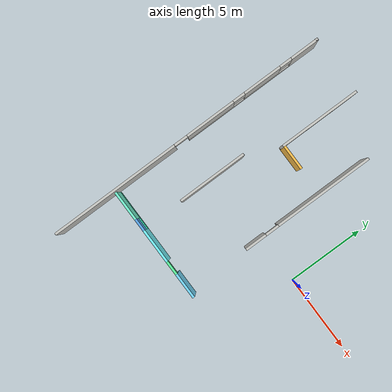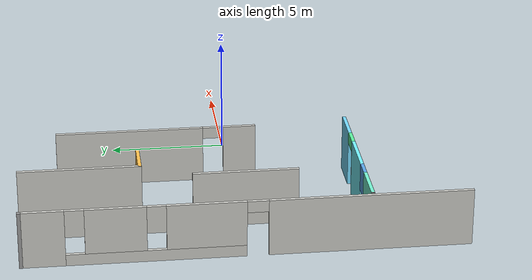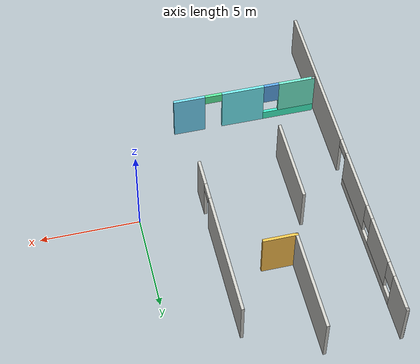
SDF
<sdf version="1.7">
 <model name="training_area">
  <link name="Wall_13">
   <pose>-6.65268 -5.18047 0 0 -0 3.14159</pose>
   <inertial>
    <mass>1</mass>
    <inertia><ixx>1</ixx><ixy>0</ixy><ixz>0</ixz><iyy>1</iyy><iyz>0</iyz><izz>1</izz></inertia>
   </inertial>
   <visual name="Wall_13_Visual_2">
    <pose>2.39091 0 0.25 0 -0 0</pose>
    <geometry><box><size>2.71819 0.15 0.5</size></box></geometry>
    <material>
     <script><uri>file://media/materials/scripts/gazebo.material</uri><name>Gazebo/Grey</name></script>
     <ambient>0.261 1 0.8 1</ambient>
     <shader type="pixel"><normal_map>__default__</normal_map></shader>
     <diffuse>0.7 0.7 0.7 1</diffuse>
     <specular>0.01 0.01 0.01 1</specular>
     <emissive>0 0 0 1</emissive>
    </material>
    <meta><layer>0</layer></meta>
   </visual>
   <visual name="Wall_13_Visual_5">
    <pose>-1.64458 0 2.25 0 -0 0</pose>
    <geometry><box><size>0.9 0.15 0.5</size></box></geometry>
    <material>
     <script><uri>file://media/materials/scripts/gazebo.material</uri><name>Gazebo/Grey</name></script>
     <ambient>0.361 0.963 0.627 1</ambient>
     <shader type="pixel"><normal_map>__default__</normal_map></shader>
     <diffuse>0.7 0.7 0.7 1</diffuse>
     <specular>0.01 0.01 0.01 1</specular>
     <emissive>0 0 0 1</emissive>
    </material>
    <meta><layer>0</layer></meta>
   </visual>
   <visual name="Wall_13_Visual_3">
    <pose>2.79091 0 1.5 0 -0 0</pose>
    <geometry><box><size>1.91819 0.15 2</size></box></geometry>
    <material>
     <script><uri>file://media/materials/scripts/gazebo.material</uri><name>Gazebo/Grey</name></script>
     <ambient>0.461 0.963 0.827 1</ambient>
     <shader type="pixel"><normal_map>__default__</normal_map></shader>
     <diffuse>0.7 0.7 0.7 1</diffuse>
     <specular>0.01 0.01 0.01 1</specular>
     <emissive>0 0 0 1</emissive>
    </material>
    <meta><layer>0</layer></meta>
   </visual>
   <visual name="Wall_13_Visual_1">
    <pose>-0.081383 0 1.25 0 -0 0</pose>
    <geometry><box><size>2.22639 0.15 2.5</size></box></geometry>
    <material>
     <script><uri>file://media/materials/scripts/gazebo.material</uri><name>Gazebo/Grey</name></script>
     <ambient>0.461 0.963 1 1</ambient>
     <shader type="pixel"><normal_map>__default__</normal_map></shader>
     <diffuse>0.7 0.7 0.7 1</diffuse>
     <specular>0.01 0.01 0.01 1</specular>
     <emissive>0 0 0 1</emissive>
    </material>
    <meta><layer>0</layer></meta>
   </visual>
   <visual name="Wall_13_Visual_4">
    <pose>1.43181 0 1.9 0 -0 0</pose>
    <geometry><box><size>0.8 0.15 1.2</size></box></geometry>
    <material>
     <script><uri>file://media/materials/scripts/gazebo.material</uri><name>Gazebo/Grey</name></script>
     <ambient>0.361 0.663 0.927 1</ambient>
     <shader type="pixel"><normal_map>__default__</normal_map></shader>
     <diffuse>0.7 0.7 0.7 1</diffuse>
     <specular>0.01 0.01 0.01 1</specular>
     <emissive>0 0 0 1</emissive>
    </material>
    <meta><layer>0</layer></meta>
   </visual>
   <visual name="Wall_13_Visual_0">
    <pose>-2.92229 0 1.25 0 -0 0</pose>
    <geometry><box><size>1.65542 0.15 2.5</size></box></geometry>
    <material>
     <script><uri>file://media/materials/scripts/gazebo.material</uri><name>Gazebo/Grey</name></script>
     <ambient>0.461 0.863 1 1</ambient>
     <shader type="pixel"><normal_map>__default__</normal_map></shader>
     <diffuse>0.7 0.7 0.7 1</diffuse>
     <specular>0.01 0.01 0.01 1</specular>
     <emissive>0 0 0 1</emissive>
    </material>
    <meta><layer>0</layer></meta>
   </visual>
   <collision name="Wall_13_Collision_4">
    <pose>1.43181 0 1.9 0 -0 0</pose>
    <geometry><box><size>0.8 0.15 1.2</size></box></geometry>
    <surface>
     <friction>
      <ode><mu>1</mu><mu2>1</mu2><fdir1>0 0 0</fdir1><slip1>0</slip1><slip2>0</slip2></ode>
      <torsional>
       <coefficient>1</coefficient>
       <patch_radius>0</patch_radius>
       <surface_radius>0</surface_radius>
       <use_patch_radius>1</use_patch_radius>
       <ode><slip>0</slip></ode>
      </torsional>
     </friction>
     <bounce><restitution_coefficient>0</restitution_coefficient><threshold>1e+06</threshold></bounce>
     <contact>
      <collide_without_contact>0</collide_without_contact>
      <collide_without_contact_bitmask>1</collide_without_contact_bitmask>
      <collide_bitmask>1</collide_bitmask>
      <ode>
       <soft_cfm>0</soft_cfm>
       <soft_erp>0.2</soft_erp>
       <kp>1e+13</kp>
       <kd>1</kd>
       <max_vel>0.01</max_vel>
       <min_depth>0</min_depth>
      </ode>
      <bullet>
       <split_impulse>1</split_impulse>
       <split_impulse_penetration_threshold>-0.01</split_impulse_penetration_threshold>
       <soft_cfm>0</soft_cfm>
       <soft_erp>0.2</soft_erp>
       <kp>1e+13</kp>
       <kd>1</kd>
      </bullet>
     </contact>
    </surface>
   </collision>
   <collision name="Wall_13_Collision_1">
    <pose>-0.081383 0 1.25 0 -0 0</pose>
    <geometry><box><size>2.22639 0.15 2.5</size></box></geometry>
    <surface>
     <friction>
      <ode><mu>1</mu><mu2>1</mu2><fdir1>0 0 0</fdir1><slip1>0</slip1><slip2>0</slip2></ode>
      <torsional>
       <coefficient>1</coefficient>
       <patch_radius>0</patch_radius>
       <surface_radius>0</surface_radius>
       <use_patch_radius>1</use_patch_radius>
       <ode><slip>0</slip></ode>
      </torsional>
     </friction>
     <bounce><restitution_coefficient>0</restitution_coefficient><threshold>1e+06</threshold></bounce>
     <contact>
      <collide_without_contact>0</collide_without_contact>
      <collide_without_contact_bitmask>1</collide_without_contact_bitmask>
      <collide_bitmask>1</collide_bitmask>
      <ode>
       <soft_cfm>0</soft_cfm>
       <soft_erp>0.2</soft_erp>
       <kp>1e+13</kp>
       <kd>1</kd>
       <max_vel>0.01</max_vel>
       <min_depth>0</min_depth>
      </ode>
      <bullet>
       <split_impulse>1</split_impulse>
       <split_impulse_penetration_threshold>-0.01</split_impulse_penetration_threshold>
       <soft_cfm>0</soft_cfm>
       <soft_erp>0.2</soft_erp>
       <kp>1e+13</kp>
       <kd>1</kd>
      </bullet>
     </contact>
    </surface>
   </collision>
   <collision name="Wall_13_Collision_2">
    <pose>2.39091 0 0.25 0 -0 0</pose>
    <geometry><box><size>2.71819 0.15 0.5</size></box></geometry>
    <surface>
     <friction>
      <ode><mu>1</mu><mu2>1</mu2><fdir1>0 0 0</fdir1><slip1>0</slip1><slip2>0</slip2></ode>
      <torsional>
       <coefficient>1</coefficient>
       <patch_radius>0</patch_radius>
       <surface_radius>0</surface_radius>
       <use_patch_radius>1</use_patch_radius>
       <ode><slip>0</slip></ode>
      </torsional>
     </friction>
     <bounce><restitution_coefficient>0</restitution_coefficient><threshold>1e+06</threshold></bounce>
     <contact>
      <collide_without_contact>0</collide_without_contact>
      <collide_without_contact_bitmask>1</collide_without_contact_bitmask>
      <collide_bitmask>1</collide_bitmask>
      <ode>
       <soft_cfm>0</soft_cfm>
       <soft_erp>0.2</soft_erp>
       <kp>1e+13</kp>
       <kd>1</kd>
       <max_vel>0.01</max_vel>
       <min_depth>0</min_depth>
      </ode>
      <bullet>
       <split_impulse>1</split_impulse>
       <split_impulse_penetration_threshold>-0.01</split_impulse_penetration_threshold>
       <soft_cfm>0</soft_cfm>
       <soft_erp>0.2</soft_erp>
       <kp>1e+13</kp>
       <kd>1</kd>
      </bullet>
     </contact>
    </surface>
   </collision>
   <collision name="Wall_13_Collision_0">
    <pose>-2.92229 0 1.25 0 -0 0</pose>
    <geometry><box><size>1.65542 0.15 2.5</size></box></geometry>
    <surface>
     <friction>
      <ode><mu>1</mu><mu2>1</mu2><fdir1>0 0 0</fdir1><slip1>0</slip1><slip2>0</slip2></ode>
      <torsional>
       <coefficient>1</coefficient>
       <patch_radius>0</patch_radius>
       <surface_radius>0</surface_radius>
       <use_patch_radius>1</use_patch_radius>
       <ode><slip>0</slip></ode>
      </torsional>
     </friction>
     <bounce><restitution_coefficient>0</restitution_coefficient><threshold>1e+06</threshold></bounce>
     <contact>
      <collide_without_contact>0</collide_without_contact>
      <collide_without_contact_bitmask>1</collide_without_contact_bitmask>
      <collide_bitmask>1</collide_bitmask>
      <ode>
       <soft_cfm>0</soft_cfm>
       <soft_erp>0.2</soft_erp>
       <kp>1e+13</kp>
       <kd>1</kd>
       <max_vel>0.01</max_vel>
       <min_depth>0</min_depth>
      </ode>
      <bullet>
       <split_impulse>1</split_impulse>
       <split_impulse_penetration_threshold>-0.01</split_impulse_penetration_threshold>
       <soft_cfm>0</soft_cfm>
       <soft_erp>0.2</soft_erp>
       <kp>1e+13</kp>
       <kd>1</kd>
      </bullet>
     </contact>
    </surface>
   </collision>
   <collision name="Wall_13_Collision_5">
    <pose>-1.64458 0 2.25 0 -0 0</pose>
    <geometry><box><size>0.9 0.15 0.5</size></box></geometry>
    <surface>
     <friction>
      <ode><mu>1</mu><mu2>1</mu2><fdir1>0 0 0</fdir1><slip1>0</slip1><slip2>0</slip2></ode>
      <torsional>
       <coefficient>1</coefficient>
       <patch_radius>0</patch_radius>
       <surface_radius>0</surface_radius>
       <use_patch_radius>1</use_patch_radius>
       <ode><slip>0</slip></ode>
      </torsional>
     </friction>
     <bounce><restitution_coefficient>0</restitution_coefficient><threshold>1e+06</threshold></bounce>
     <contact>
      <collide_without_contact>0</collide_without_contact>
      <collide_without_contact_bitmask>1</collide_without_contact_bitmask>
      <collide_bitmask>1</collide_bitmask>
      <ode>
       <soft_cfm>0</soft_cfm>
       <soft_erp>0.2</soft_erp>
       <kp>1e+13</kp>
       <kd>1</kd>
       <max_vel>0.01</max_vel>
       <min_depth>0</min_depth>
      </ode>
      <bullet>
       <split_impulse>1</split_impulse>
       <split_impulse_penetration_threshold>-0.01</split_impulse_penetration_threshold>
       <soft_cfm>0</soft_cfm>
       <soft_erp>0.2</soft_erp>
       <kp>1e+13</kp>
       <kd>1</kd>
      </bullet>
     </contact>
    </surface>
   </collision>
   <collision name="Wall_13_Collision_3">
    <pose>2.79091 0 1.5 0 -0 0</pose>
    <geometry><box><size>1.91819 0.15 2</size></box></geometry>
    <surface>
     <friction>
      <ode><mu>1</mu><mu2>1</mu2><fdir1>0 0 0</fdir1><slip1>0</slip1><slip2>0</slip2></ode>
      <torsional>
       <coefficient>1</coefficient>
       <patch_radius>0</patch_radius>
       <surface_radius>0</surface_radius>
       <use_patch_radius>1</use_patch_radius>
       <ode><slip>0</slip></ode>
      </torsional>
     </friction>
     <bounce><restitution_coefficient>0</restitution_coefficient><threshold>1e+06</threshold></bounce>
     <contact>
      <collide_without_contact>0</collide_without_contact>
      <collide_without_contact_bitmask>1</collide_without_contact_bitmask>
      <collide_bitmask>1</collide_bitmask>
      <ode>
       <soft_cfm>0</soft_cfm>
       <soft_erp>0.2</soft_erp>
       <kp>1e+13</kp>
       <kd>1</kd>
       <max_vel>0.01</max_vel>
       <min_depth>0</min_depth>
      </ode>
      <bullet>
       <split_impulse>1</split_impulse>
       <split_impulse_penetration_threshold>-0.01</split_impulse_penetration_threshold>
       <soft_cfm>0</soft_cfm>
       <soft_erp>0.2</soft_erp>
       <kp>1e+13</kp>
       <kd>1</kd>
      </bullet>
     </contact>
    </surface>
   </collision>
  </link>
  <link name="Wall_14">
   <pose>-10.3277 -5.18047 0 0 -0 0</pose>
   <visual name="Wall_14_Visual">
    <pose>0 0 1.25 0 -0 0</pose>
    <geometry><box><size>0.15 0.15 2.5</size></box></geometry>
    <material>
     <script><uri>file://media/materials/scripts/gazebo.material</uri><name>Gazebo/Grey</name></script>
     <ambient>1 1 1 1</ambient>
     <shader type="pixel"/>
    </material>
    <meta><layer>0</layer></meta>
   </visual>
   <collision name="Wall_14_Collision">
    <pose>0 0 1.25 0 -0 0</pose>
    <geometry><box><size>0.15 0.15 2.5</size></box></geometry>
    <surface>
     <friction>
      <ode><mu>1</mu><mu2>1</mu2><fdir1>0 0 0</fdir1><slip1>0</slip1><slip2>0</slip2></ode>
      <torsional>
       <coefficient>1</coefficient>
       <patch_radius>0</patch_radius>
       <surface_radius>0</surface_radius>
       <use_patch_radius>1</use_patch_radius>
       <ode><slip>0</slip></ode>
      </torsional>
     </friction>
     <bounce><restitution_coefficient>0</restitution_coefficient><threshold>1e+06</threshold></bounce>
     <contact>
      <collide_without_contact>0</collide_without_contact>
      <collide_without_contact_bitmask>1</collide_without_contact_bitmask>
      <collide_bitmask>1</collide_bitmask>
      <ode>
       <soft_cfm>0</soft_cfm>
       <soft_erp>0.2</soft_erp>
       <kp>1e+13</kp>
       <kd>1</kd>
       <max_vel>0.01</max_vel>
       <min_depth>0</min_depth>
      </ode>
      <bullet>
       <split_impulse>1</split_impulse>
       <split_impulse_penetration_threshold>-0.01</split_impulse_penetration_threshold>
       <soft_cfm>0</soft_cfm>
       <soft_erp>0.2</soft_erp>
       <kp>1e+13</kp>
       <kd>1</kd>
      </bullet>
     </contact>
    </surface>
   </collision>
  </link>
  <link name="Wall_18">
   <pose>-3.31028 3.23789 0 0 -0 1.5708</pose>
   <inertial>
    <mass>1</mass>
    <inertia><ixx>1</ixx><ixy>0</ixy><ixz>0</ixz><iyy>1</iyy><iyz>0</iyz><izz>1</izz></inertia>
   </inertial>
   <visual name="Wall_18_Visual_1">
    <pose>1.15758 0 1.25 0 -0 0</pose>
    <geometry><box><size>6.43485 0.15 2.5</size></box></geometry>
    <material>
     <script><uri>file://media/materials/scripts/gazebo.material</uri><name>Gazebo/CeilingTiled</name></script>
     <ambient>0.361 0.363 0.927 1</ambient>
     <shader type="pixel"><normal_map>__default__</normal_map></shader>
     <diffuse>1 1 1 1</diffuse>
     <specular>0 0 0 1</specular>
     <emissive>0 0 0 1</emissive>
    </material>
    <meta><layer>0</layer></meta>
   </visual>
   <visual name="Wall_18_Visual_2">
    <pose>-2.50985 0 2.25 0 -0 0</pose>
    <geometry><box><size>0.9 0.15 0.5</size></box></geometry>
    <material>
     <script><uri>file://media/materials/scripts/gazebo.material</uri><name>Gazebo/CeilingTiled</name></script>
     <ambient>0.361 0.363 0.627 1</ambient>
     <shader type="pixel"><normal_map>__default__</normal_map></shader>
     <diffuse>1 1 1 1</diffuse>
     <specular>0 0 0 1</specular>
     <emissive>0 0 0 1</emissive>
    </material>
    <meta><layer>0</layer></meta>
   </visual>
   <visual name="Wall_18_Visual_0">
    <pose>-3.66742 0 1.25 0 -0 0</pose>
    <geometry><box><size>1.41515 0.15 2.5</size></box></geometry>
    <material>
     <script><uri>file://media/materials/scripts/gazebo.material</uri><name>Gazebo/CeilingTiled</name></script>
     <ambient>0.961 0.363 0.327 1</ambient>
     <shader type="pixel"><normal_map>__default__</normal_map></shader>
     <diffuse>1 1 1 1</diffuse>
     <specular>0 0 0 1</specular>
     <emissive>0 0 0 1</emissive>
    </material>
    <meta><layer>0</layer></meta>
   </visual>
   <collision name="Wall_18_Collision_0">
    <pose>-3.66742 0 1.25 0 -0 0</pose>
    <geometry><box><size>1.41515 0.15 2.5</size></box></geometry>
    <surface>
     <friction>
      <ode><mu>1</mu><mu2>1</mu2><fdir1>0 0 0</fdir1><slip1>0</slip1><slip2>0</slip2></ode>
      <torsional>
       <coefficient>1</coefficient>
       <patch_radius>0</patch_radius>
       <surface_radius>0</surface_radius>
       <use_patch_radius>1</use_patch_radius>
       <ode><slip>0</slip></ode>
      </torsional>
     </friction>
     <bounce><restitution_coefficient>0</restitution_coefficient><threshold>1e+06</threshold></bounce>
     <contact>
      <collide_without_contact>0</collide_without_contact>
      <collide_without_contact_bitmask>1</collide_without_contact_bitmask>
      <collide_bitmask>1</collide_bitmask>
      <ode>
       <soft_cfm>0</soft_cfm>
       <soft_erp>0.2</soft_erp>
       <kp>1e+13</kp>
       <kd>1</kd>
       <max_vel>0.01</max_vel>
       <min_depth>0</min_depth>
      </ode>
      <bullet>
       <split_impulse>1</split_impulse>
       <split_impulse_penetration_threshold>-0.01</split_impulse_penetration_threshold>
       <soft_cfm>0</soft_cfm>
       <soft_erp>0.2</soft_erp>
       <kp>1e+13</kp>
       <kd>1</kd>
      </bullet>
     </contact>
    </surface>
   </collision>
   <collision name="Wall_18_Collision_2">
    <pose>-2.50985 0 2.25 0 -0 0</pose>
    <geometry><box><size>0.9 0.15 0.5</size></box></geometry>
    <surface>
     <friction>
      <ode><mu>1</mu><mu2>1</mu2><fdir1>0 0 0</fdir1><slip1>0</slip1><slip2>0</slip2></ode>
      <torsional>
       <coefficient>1</coefficient>
       <patch_radius>0</patch_radius>
       <surface_radius>0</surface_radius>
       <use_patch_radius>1</use_patch_radius>
       <ode><slip>0</slip></ode>
      </torsional>
     </friction>
     <bounce><restitution_coefficient>0</restitution_coefficient><threshold>1e+06</threshold></bounce>
     <contact>
      <collide_without_contact>0</collide_without_contact>
      <collide_without_contact_bitmask>1</collide_without_contact_bitmask>
      <collide_bitmask>1</collide_bitmask>
      <ode>
       <soft_cfm>0</soft_cfm>
       <soft_erp>0.2</soft_erp>
       <kp>1e+13</kp>
       <kd>1</kd>
       <max_vel>0.01</max_vel>
       <min_depth>0</min_depth>
      </ode>
      <bullet>
       <split_impulse>1</split_impulse>
       <split_impulse_penetration_threshold>-0.01</split_impulse_penetration_threshold>
       <soft_cfm>0</soft_cfm>
       <soft_erp>0.2</soft_erp>
       <kp>1e+13</kp>
       <kd>1</kd>
      </bullet>
     </contact>
    </surface>
   </collision>
   <collision name="Wall_18_Collision_1">
    <pose>1.15758 0 1.25 0 -0 0</pose>
    <geometry><box><size>6.43485 0.15 2.5</size></box></geometry>
    <surface>
     <friction>
      <ode><mu>1</mu><mu2>1</mu2><fdir1>0 0 0</fdir1><slip1>0</slip1><slip2>0</slip2></ode>
      <torsional>
       <coefficient>1</coefficient>
       <patch_radius>0</patch_radius>
       <surface_radius>0</surface_radius>
       <use_patch_radius>1</use_patch_radius>
       <ode><slip>0</slip></ode>
      </torsional>
     </friction>
     <bounce><restitution_coefficient>0</restitution_coefficient><threshold>1e+06</threshold></bounce>
     <contact>
      <collide_without_contact>0</collide_without_contact>
      <collide_without_contact_bitmask>1</collide_without_contact_bitmask>
      <collide_bitmask>1</collide_bitmask>
      <ode>
       <soft_cfm>0</soft_cfm>
       <soft_erp>0.2</soft_erp>
       <kp>1e+13</kp>
       <kd>1</kd>
       <max_vel>0.01</max_vel>
       <min_depth>0</min_depth>
      </ode>
      <bullet>
       <split_impulse>1</split_impulse>
       <split_impulse_penetration_threshold>-0.01</split_impulse_penetration_threshold>
       <soft_cfm>0</soft_cfm>
       <soft_erp>0.2</soft_erp>
       <kp>1e+13</kp>
       <kd>1</kd>
      </bullet>
     </contact>
    </surface>
   </collision>
  </link>
  <link name="Wall_22">
   <pose>-6.80922 6.72196 0 0 0 -1.5708</pose>
   <visual name="Wall_22_Visual">
    <pose>0 0 1.25 0 -0 0</pose>
    <geometry><box><size>5.25 0.15 2.5</size></box></geometry>
    <material>
     <script><uri>file://media/materials/scripts/gazebo.material</uri><name>Gazebo/CeilingTiled</name></script>
     <ambient>1 0.764706 0.305882 1</ambient>
     <shader type="pixel"/>
    </material>
    <meta><layer>0</layer></meta>
   </visual>
   <collision name="Wall_22_Collision">
    <pose>0 0 1.25 0 -0 0</pose>
    <geometry><box><size>5.25 0.15 2.5</size></box></geometry>
    <surface>
     <friction>
      <ode><mu>1</mu><mu2>1</mu2><fdir1>0 0 0</fdir1><slip1>0</slip1><slip2>0</slip2></ode>
      <torsional>
       <coefficient>1</coefficient>
       <patch_radius>0</patch_radius>
       <surface_radius>0</surface_radius>
       <use_patch_radius>1</use_patch_radius>
       <ode><slip>0</slip></ode>
      </torsional>
     </friction>
     <bounce><restitution_coefficient>0</restitution_coefficient><threshold>1e+06</threshold></bounce>
     <contact>
      <collide_without_contact>0</collide_without_contact>
      <collide_without_contact_bitmask>1</collide_without_contact_bitmask>
      <collide_bitmask>1</collide_bitmask>
      <ode>
       <soft_cfm>0</soft_cfm>
       <soft_erp>0.2</soft_erp>
       <kp>1e+13</kp>
       <kd>1</kd>
       <max_vel>0.01</max_vel>
       <min_depth>0</min_depth>
      </ode>
      <bullet>
       <split_impulse>1</split_impulse>
       <split_impulse_penetration_threshold>-0.01</split_impulse_penetration_threshold>
       <soft_cfm>0</soft_cfm>
       <soft_erp>0.2</soft_erp>
       <kp>1e+13</kp>
       <kd>1</kd>
      </bullet>
     </contact>
    </surface>
   </collision>
  </link>
  <link name="Wall_23">
   <pose>-6.00922 4.17196 0 0 -0 0</pose>
   <visual name="Wall_23_Visual">
    <pose>0 0 1.25 0 -0 0</pose>
    <geometry><box><size>1.75 0.15 2.5</size></box></geometry>
    <material>
     <script><uri>file://media/materials/scripts/gazebo.material</uri><name>Gazebo/Grey</name></script>
     <ambient>1 0.764706 0.305882 1</ambient>
     <shader type="pixel"/>
    </material>
    <meta><layer>0</layer></meta>
   </visual>
   <collision name="Wall_23_Collision">
    <pose>0 0 1.25 0 -0 0</pose>
    <geometry><box><size>1.75 0.15 2.5</size></box></geometry>
    <surface>
     <friction>
      <ode><mu>1</mu><mu2>1</mu2><fdir1>0 0 0</fdir1><slip1>0</slip1><slip2>0</slip2></ode>
      <torsional>
       <coefficient>1</coefficient>
       <patch_radius>0</patch_radius>
       <surface_radius>0</surface_radius>
       <use_patch_radius>1</use_patch_radius>
       <ode><slip>0</slip></ode>
      </torsional>
     </friction>
     <bounce><restitution_coefficient>0</restitution_coefficient><threshold>1e+06</threshold></bounce>
     <contact>
      <collide_without_contact>0</collide_without_contact>
      <collide_without_contact_bitmask>1</collide_without_contact_bitmask>
      <collide_bitmask>1</collide_bitmask>
      <ode>
       <soft_cfm>0</soft_cfm>
       <soft_erp>0.2</soft_erp>
       <kp>1e+13</kp>
       <kd>1</kd>
       <max_vel>0.01</max_vel>
       <min_depth>0</min_depth>
      </ode>
      <bullet>
       <split_impulse>1</split_impulse>
       <split_impulse_penetration_threshold>-0.01</split_impulse_penetration_threshold>
       <soft_cfm>0</soft_cfm>
       <soft_erp>0.2</soft_erp>
       <kp>1e+13</kp>
       <kd>1</kd>
      </bullet>
     </contact>
    </surface>
   </collision>
  </link>
  <link name="Wall_26">
   <pose>-7.78566 -0.226392 0 0 0 -1.5708</pose>
   <inertial>
    <mass>1</mass>
    <inertia><ixx>1</ixx><ixy>0</ixy><ixz>0</ixz><iyy>1</iyy><iyz>0</iyz><izz>1</izz></inertia>
   </inertial>
   <visual name="Wall_26_Visual">
    <pose>0 0 1.25 0 -0 0</pose>
    <geometry><box><size>4.5 0.15 2.5</size></box></geometry>
    <material>
     <script><uri>file://media/materials/scripts/gazebo.material</uri><name>Gazebo/CeilingTiled</name></script>
     <ambient>0.6 0.6 0.106 1</ambient>
     <shader type="pixel"><normal_map>__default__</normal_map></shader>
     <diffuse>1 1 1 1</diffuse>
     <specular>0 0 0 1</specular>
     <emissive>0 0 0 1</emissive>
    </material>
    <meta><layer>0</layer></meta>
   </visual>
   <collision name="Wall_26_Collision">
    <pose>0 0 1.25 0 -0 0</pose>
    <geometry><box><size>4.5 0.15 2.5</size></box></geometry>
    <surface>
     <friction>
      <ode><mu>1</mu><mu2>1</mu2><fdir1>0 0 0</fdir1><slip1>0</slip1><slip2>0</slip2></ode>
      <torsional>
       <coefficient>1</coefficient>
       <patch_radius>0</patch_radius>
       <surface_radius>0</surface_radius>
       <use_patch_radius>1</use_patch_radius>
       <ode><slip>0</slip></ode>
      </torsional>
     </friction>
     <bounce><restitution_coefficient>0</restitution_coefficient><threshold>1e+06</threshold></bounce>
     <contact>
      <collide_without_contact>0</collide_without_contact>
      <collide_without_contact_bitmask>1</collide_without_contact_bitmask>
      <collide_bitmask>1</collide_bitmask>
      <ode>
       <soft_cfm>0</soft_cfm>
       <soft_erp>0.2</soft_erp>
       <kp>1e+13</kp>
       <kd>1</kd>
       <max_vel>0.01</max_vel>
       <min_depth>0</min_depth>
      </ode>
      <bullet>
       <split_impulse>1</split_impulse>
       <split_impulse_penetration_threshold>-0.01</split_impulse_penetration_threshold>
       <soft_cfm>0</soft_cfm>
       <soft_erp>0.2</soft_erp>
       <kp>1e+13</kp>
       <kd>1</kd>
      </bullet>
     </contact>
    </surface>
   </collision>
  </link>
  <link name="Wall_4">
   <pose>-10.55 9.3 0 0 -0 0</pose>
   <visual name="Wall_4_Visual">
    <pose>0 0 1.25 0 -0 0</pose>
    <geometry><box><size>0.16 0.15 2.5</size></box></geometry>
    <material>
     <script><uri>file://media/materials/scripts/gazebo.material</uri><name>Gazebo/Grey</name></script>
     <ambient>1 1 1 1</ambient>
     <shader type="pixel"/>
    </material>
    <meta><layer>0</layer></meta>
   </visual>
   <collision name="Wall_4_Collision">
    <pose>0 0 1.25 0 -0 0</pose>
    <geometry><box><size>0.16 0.15 2.5</size></box></geometry>
    <surface>
     <friction>
      <ode><mu>1</mu><mu2>1</mu2><fdir1>0 0 0</fdir1><slip1>0</slip1><slip2>0</slip2></ode>
      <torsional>
       <coefficient>1</coefficient>
       <patch_radius>0</patch_radius>
       <surface_radius>0</surface_radius>
       <use_patch_radius>1</use_patch_radius>
       <ode><slip>0</slip></ode>
      </torsional>
     </friction>
     <bounce><restitution_coefficient>0</restitution_coefficient><threshold>1e+06</threshold></bounce>
     <contact>
      <collide_without_contact>0</collide_without_contact>
      <collide_without_contact_bitmask>1</collide_without_contact_bitmask>
      <collide_bitmask>1</collide_bitmask>
      <ode>
       <soft_cfm>0</soft_cfm>
       <soft_erp>0.2</soft_erp>
       <kp>1e+13</kp>
       <kd>1</kd>
       <max_vel>0.01</max_vel>
       <min_depth>0</min_depth>
      </ode>
      <bullet>
       <split_impulse>1</split_impulse>
       <split_impulse_penetration_threshold>-0.01</split_impulse_penetration_threshold>
       <soft_cfm>0</soft_cfm>
       <soft_erp>0.2</soft_erp>
       <kp>1e+13</kp>
       <kd>1</kd>
      </bullet>
     </contact>
    </surface>
   </collision>
  </link>
  <link name="Wall_5">
   <pose>-10.545 0 0 0 0 -1.5708</pose>
   <inertial>
    <mass>1</mass>
    <inertia><ixx>1</ixx><ixy>0</ixy><ixz>0</ixz><iyy>1</iyy><iyz>0</iyz><izz>1</izz></inertia>
   </inertial>
   <visual name="Wall_5_Visual_4">
    <pose>-1.68881 0 1.5 0 -0 0</pose>
    <geometry><box><size>3.2999 0.15 2</size></box></geometry>
    <material>
     <script><uri>file://media/materials/scripts/gazebo.material</uri><name>Gazebo/CeilingTiled</name></script>
     <ambient>0.5 0.9 0.806 1</ambient>
     <shader type="pixel"><normal_map>__default__</normal_map></shader>
     <diffuse>1 1 1 1</diffuse>
     <specular>0 0 0 1</specular>
     <emissive>0 0 0 1</emissive>
    </material>
    <meta><layer>0</layer></meta>
   </visual>
   <visual name="Wall_5_Visual_6">
    <pose>-3.73876 0 1.9 0 -0 0</pose>
    <geometry><box><size>0.8 0.15 1.2</size></box></geometry>
    <material>
     <script><uri>file://media/materials/scripts/gazebo.material</uri><name>Gazebo/CeilingTiled</name></script>
     <ambient>1 0.265 0.106 1</ambient>
     <shader type="pixel"><normal_map>__default__</normal_map></shader>
     <diffuse>1 1 1 1</diffuse>
     <specular>0 0 0 1</specular>
     <emissive>0 0 0 1</emissive>
    </material>
    <meta><layer>0</layer></meta>
   </visual>
   <visual name="Wall_5_Visual_2">
    <pose>-3.75691 0 0.25 0 -0 0</pose>
    <geometry><box><size>7.4361 0.15 0.5</size></box></geometry>
    <material>
     <script><uri>file://media/materials/scripts/gazebo.material</uri><name>Gazebo/CeilingTiled</name></script>
     <ambient>0.4 0.7 0.806 1</ambient>
     <shader type="pixel"><normal_map>__default__</normal_map></shader>
     <diffuse>1 1 1 1</diffuse>
     <specular>0 0 0 1</specular>
     <emissive>0 0 0 1</emissive>
    </material>
    <meta><layer>0</layer></meta>
   </visual>
   <visual name="Wall_5_Visual_0">
    <pose>-8.42498 0 1.25 0 -0 0</pose>
    <geometry><box><size>1.90004 0.15 2.5</size></box></geometry>
    <material>
     <script><uri>file://media/materials/scripts/gazebo.material</uri><name>Gazebo/CeilingTiled</name></script>
     <ambient>0.5 0.365 0.706 1</ambient>
     <shader type="pixel"><normal_map>__default__</normal_map></shader>
     <diffuse>1 1 1 1</diffuse>
     <specular>0 0 0 1</specular>
     <emissive>0 0 0 1</emissive>
    </material>
    <meta><layer>0</layer></meta>
   </visual>
   <visual name="Wall_5_Visual_5">
    <pose>-7.07496 0 1.9 0 -0 0</pose>
    <geometry><box><size>0.8 0.15 1.2</size></box></geometry>
    <material>
     <script><uri>file://media/materials/scripts/gazebo.material</uri><name>Gazebo/CeilingTiled</name></script>
     <ambient>0.3 0.965 0.806 1</ambient>
     <shader type="pixel"><normal_map>__default__</normal_map></shader>
     <diffuse>1 1 1 1</diffuse>
     <specular>0 0 0 1</specular>
     <emissive>0 0 0 1</emissive>
    </material>
    <meta><layer>0</layer></meta>
   </visual>
   <visual name="Wall_5_Visual_1">
    <pose>5.11807 0 1.25 0 -0 0</pose>
    <geometry><box><size>8.51386 0.15 2.5</size></box></geometry>
    <material>
     <script><uri>file://media/materials/scripts/gazebo.material</uri><name>Gazebo/CeilingTiled</name></script>
     <ambient>0.6 0.465 0.706 1</ambient>
     <shader type="pixel"><normal_map>__default__</normal_map></shader>
     <diffuse>1 1 1 1</diffuse>
     <specular>0 0 0 1</specular>
     <emissive>0 0 0 1</emissive>
    </material>
    <meta><layer>0</layer></meta>
   </visual>
   <visual name="Wall_5_Visual_7">
    <pose>0.41114 0 2.25 0 -0 0</pose>
    <geometry><box><size>0.9 0.15 0.5</size></box></geometry>
    <material>
     <script><uri>file://media/materials/scripts/gazebo.material</uri><name>Gazebo/CeilingTiled</name></script>
     <ambient>0.5 0.965 0.706 1</ambient>
     <shader type="pixel"><normal_map>__default__</normal_map></shader>
     <diffuse>1 1 1 1</diffuse>
     <specular>0 0 0 1</specular>
     <emissive>0 0 0 1</emissive>
    </material>
    <meta><layer>0</layer></meta>
   </visual>
   <visual name="Wall_5_Visual_3">
    <pose>-5.40686 0 1.5 0 -0 0</pose>
    <geometry><box><size>2.5362 0.15 2</size></box></geometry>
    <material>
     <script><uri>file://media/materials/scripts/gazebo.material</uri><name>Gazebo/CeilingTiled</name></script>
     <ambient>0.6 0.565 0.806 1</ambient>
     <shader type="pixel"><normal_map>__default__</normal_map></shader>
     <diffuse>1 1 1 1</diffuse>
     <specular>0 0 0 1</specular>
     <emissive>0 0 0 1</emissive>
    </material>
    <meta><layer>0</layer></meta>
   </visual>
   <collision name="Wall_5_Collision_5">
    <pose>-7.07496 0 1.9 0 -0 0</pose>
    <geometry><box><size>0.8 0.15 1.2</size></box></geometry>
    <surface>
     <friction>
      <ode><mu>1</mu><mu2>1</mu2><fdir1>0 0 0</fdir1><slip1>0</slip1><slip2>0</slip2></ode>
      <torsional>
       <coefficient>1</coefficient>
       <patch_radius>0</patch_radius>
       <surface_radius>0</surface_radius>
       <use_patch_radius>1</use_patch_radius>
       <ode><slip>0</slip></ode>
      </torsional>
     </friction>
     <bounce><restitution_coefficient>0</restitution_coefficient><threshold>1e+06</threshold></bounce>
     <contact>
      <collide_without_contact>0</collide_without_contact>
      <collide_without_contact_bitmask>1</collide_without_contact_bitmask>
      <collide_bitmask>1</collide_bitmask>
      <ode>
       <soft_cfm>0</soft_cfm>
       <soft_erp>0.2</soft_erp>
       <kp>1e+13</kp>
       <kd>1</kd>
       <max_vel>0.01</max_vel>
       <min_depth>0</min_depth>
      </ode>
      <bullet>
       <split_impulse>1</split_impulse>
       <split_impulse_penetration_threshold>-0.01</split_impulse_penetration_threshold>
       <soft_cfm>0</soft_cfm>
       <soft_erp>0.2</soft_erp>
       <kp>1e+13</kp>
       <kd>1</kd>
      </bullet>
     </contact>
    </surface>
   </collision>
   <collision name="Wall_5_Collision_1">
    <pose>5.11807 0 1.25 0 -0 0</pose>
    <geometry><box><size>8.51386 0.15 2.5</size></box></geometry>
    <surface>
     <friction>
      <ode><mu>1</mu><mu2>1</mu2><fdir1>0 0 0</fdir1><slip1>0</slip1><slip2>0</slip2></ode>
      <torsional>
       <coefficient>1</coefficient>
       <patch_radius>0</patch_radius>
       <surface_radius>0</surface_radius>
       <use_patch_radius>1</use_patch_radius>
       <ode><slip>0</slip></ode>
      </torsional>
     </friction>
     <bounce><restitution_coefficient>0</restitution_coefficient><threshold>1e+06</threshold></bounce>
     <contact>
      <collide_without_contact>0</collide_without_contact>
      <collide_without_contact_bitmask>1</collide_without_contact_bitmask>
      <collide_bitmask>1</collide_bitmask>
      <ode>
       <soft_cfm>0</soft_cfm>
       <soft_erp>0.2</soft_erp>
       <kp>1e+13</kp>
       <kd>1</kd>
       <max_vel>0.01</max_vel>
       <min_depth>0</min_depth>
      </ode>
      <bullet>
       <split_impulse>1</split_impulse>
       <split_impulse_penetration_threshold>-0.01</split_impulse_penetration_threshold>
       <soft_cfm>0</soft_cfm>
       <soft_erp>0.2</soft_erp>
       <kp>1e+13</kp>
       <kd>1</kd>
      </bullet>
     </contact>
    </surface>
   </collision>
   <collision name="Wall_5_Collision_2">
    <pose>-3.75691 0 0.25 0 -0 0</pose>
    <geometry><box><size>7.4361 0.15 0.5</size></box></geometry>
    <surface>
     <friction>
      <ode><mu>1</mu><mu2>1</mu2><fdir1>0 0 0</fdir1><slip1>0</slip1><slip2>0</slip2></ode>
      <torsional>
       <coefficient>1</coefficient>
       <patch_radius>0</patch_radius>
       <surface_radius>0</surface_radius>
       <use_patch_radius>1</use_patch_radius>
       <ode><slip>0</slip></ode>
      </torsional>
     </friction>
     <bounce><restitution_coefficient>0</restitution_coefficient><threshold>1e+06</threshold></bounce>
     <contact>
      <collide_without_contact>0</collide_without_contact>
      <collide_without_contact_bitmask>1</collide_without_contact_bitmask>
      <collide_bitmask>1</collide_bitmask>
      <ode>
       <soft_cfm>0</soft_cfm>
       <soft_erp>0.2</soft_erp>
       <kp>1e+13</kp>
       <kd>1</kd>
       <max_vel>0.01</max_vel>
       <min_depth>0</min_depth>
      </ode>
      <bullet>
       <split_impulse>1</split_impulse>
       <split_impulse_penetration_threshold>-0.01</split_impulse_penetration_threshold>
       <soft_cfm>0</soft_cfm>
       <soft_erp>0.2</soft_erp>
       <kp>1e+13</kp>
       <kd>1</kd>
      </bullet>
     </contact>
    </surface>
   </collision>
   <collision name="Wall_5_Collision_0">
    <pose>-8.42498 0 1.25 0 -0 0</pose>
    <geometry><box><size>1.90004 0.15 2.5</size></box></geometry>
    <surface>
     <friction>
      <ode><mu>1</mu><mu2>1</mu2><fdir1>0 0 0</fdir1><slip1>0</slip1><slip2>0</slip2></ode>
      <torsional>
       <coefficient>1</coefficient>
       <patch_radius>0</patch_radius>
       <surface_radius>0</surface_radius>
       <use_patch_radius>1</use_patch_radius>
       <ode><slip>0</slip></ode>
      </torsional>
     </friction>
     <bounce><restitution_coefficient>0</restitution_coefficient><threshold>1e+06</threshold></bounce>
     <contact>
      <collide_without_contact>0</collide_without_contact>
      <collide_without_contact_bitmask>1</collide_without_contact_bitmask>
      <collide_bitmask>1</collide_bitmask>
      <ode>
       <soft_cfm>0</soft_cfm>
       <soft_erp>0.2</soft_erp>
       <kp>1e+13</kp>
       <kd>1</kd>
       <max_vel>0.01</max_vel>
       <min_depth>0</min_depth>
      </ode>
      <bullet>
       <split_impulse>1</split_impulse>
       <split_impulse_penetration_threshold>-0.01</split_impulse_penetration_threshold>
       <soft_cfm>0</soft_cfm>
       <soft_erp>0.2</soft_erp>
       <kp>1e+13</kp>
       <kd>1</kd>
      </bullet>
     </contact>
    </surface>
   </collision>
   <collision name="Wall_5_Collision_4">
    <pose>-1.68881 0 1.5 0 -0 0</pose>
    <geometry><box><size>3.2999 0.15 2</size></box></geometry>
    <surface>
     <friction>
      <ode><mu>1</mu><mu2>1</mu2><fdir1>0 0 0</fdir1><slip1>0</slip1><slip2>0</slip2></ode>
      <torsional>
       <coefficient>1</coefficient>
       <patch_radius>0</patch_radius>
       <surface_radius>0</surface_radius>
       <use_patch_radius>1</use_patch_radius>
       <ode><slip>0</slip></ode>
      </torsional>
     </friction>
     <bounce><restitution_coefficient>0</restitution_coefficient><threshold>1e+06</threshold></bounce>
     <contact>
      <collide_without_contact>0</collide_without_contact>
      <collide_without_contact_bitmask>1</collide_without_contact_bitmask>
      <collide_bitmask>1</collide_bitmask>
      <ode>
       <soft_cfm>0</soft_cfm>
       <soft_erp>0.2</soft_erp>
       <kp>1e+13</kp>
       <kd>1</kd>
       <max_vel>0.01</max_vel>
       <min_depth>0</min_depth>
      </ode>
      <bullet>
       <split_impulse>1</split_impulse>
       <split_impulse_penetration_threshold>-0.01</split_impulse_penetration_threshold>
       <soft_cfm>0</soft_cfm>
       <soft_erp>0.2</soft_erp>
       <kp>1e+13</kp>
       <kd>1</kd>
      </bullet>
     </contact>
    </surface>
   </collision>
   <collision name="Wall_5_Collision_6">
    <pose>-3.73876 0 1.9 0 -0 0</pose>
    <geometry><box><size>0.8 0.15 1.2</size></box></geometry>
    <surface>
     <friction>
      <ode><mu>1</mu><mu2>1</mu2><fdir1>0 0 0</fdir1><slip1>0</slip1><slip2>0</slip2></ode>
      <torsional>
       <coefficient>1</coefficient>
       <patch_radius>0</patch_radius>
       <surface_radius>0</surface_radius>
       <use_patch_radius>1</use_patch_radius>
       <ode><slip>0</slip></ode>
      </torsional>
     </friction>
     <bounce><restitution_coefficient>0</restitution_coefficient><threshold>1e+06</threshold></bounce>
     <contact>
      <collide_without_contact>0</collide_without_contact>
      <collide_without_contact_bitmask>1</collide_without_contact_bitmask>
      <collide_bitmask>1</collide_bitmask>
      <ode>
       <soft_cfm>0</soft_cfm>
       <soft_erp>0.2</soft_erp>
       <kp>1e+13</kp>
       <kd>1</kd>
       <max_vel>0.01</max_vel>
       <min_depth>0</min_depth>
      </ode>
      <bullet>
       <split_impulse>1</split_impulse>
       <split_impulse_penetration_threshold>-0.01</split_impulse_penetration_threshold>
       <soft_cfm>0</soft_cfm>
       <soft_erp>0.2</soft_erp>
       <kp>1e+13</kp>
       <kd>1</kd>
      </bullet>
     </contact>
    </surface>
   </collision>
   <collision name="Wall_5_Collision_3">
    <pose>-5.40686 0 1.5 0 -0 0</pose>
    <geometry><box><size>2.5362 0.15 2</size></box></geometry>
    <surface>
     <friction>
      <ode><mu>1</mu><mu2>1</mu2><fdir1>0 0 0</fdir1><slip1>0</slip1><slip2>0</slip2></ode>
      <torsional>
       <coefficient>1</coefficient>
       <patch_radius>0</patch_radius>
       <surface_radius>0</surface_radius>
       <use_patch_radius>1</use_patch_radius>
       <ode><slip>0</slip></ode>
      </torsional>
     </friction>
     <bounce><restitution_coefficient>0</restitution_coefficient><threshold>1e+06</threshold></bounce>
     <contact>
      <collide_without_contact>0</collide_without_contact>
      <collide_without_contact_bitmask>1</collide_without_contact_bitmask>
      <collide_bitmask>1</collide_bitmask>
      <ode>
       <soft_cfm>0</soft_cfm>
       <soft_erp>0.2</soft_erp>
       <kp>1e+13</kp>
       <kd>1</kd>
       <max_vel>0.01</max_vel>
       <min_depth>0</min_depth>
      </ode>
      <bullet>
       <split_impulse>1</split_impulse>
       <split_impulse_penetration_threshold>-0.01</split_impulse_penetration_threshold>
       <soft_cfm>0</soft_cfm>
       <soft_erp>0.2</soft_erp>
       <kp>1e+13</kp>
       <kd>1</kd>
      </bullet>
     </contact>
    </surface>
   </collision>
   <collision name="Wall_5_Collision_7">
    <pose>0.41114 0 2.25 0 -0 0</pose>
    <geometry><box><size>0.9 0.15 0.5</size></box></geometry>
    <surface>
     <friction>
      <ode><mu>1</mu><mu2>1</mu2><fdir1>0 0 0</fdir1><slip1>0</slip1><slip2>0</slip2></ode>
      <torsional>
       <coefficient>1</coefficient>
       <patch_radius>0</patch_radius>
       <surface_radius>0</surface_radius>
       <use_patch_radius>1</use_patch_radius>
       <ode><slip>0</slip></ode>
      </torsional>
     </friction>
     <bounce><restitution_coefficient>0</restitution_coefficient><threshold>1e+06</threshold></bounce>
     <contact>
      <collide_without_contact>0</collide_without_contact>
      <collide_without_contact_bitmask>1</collide_without_contact_bitmask>
      <collide_bitmask>1</collide_bitmask>
      <ode>
       <soft_cfm>0</soft_cfm>
       <soft_erp>0.2</soft_erp>
       <kp>1e+13</kp>
       <kd>1</kd>
       <max_vel>0.01</max_vel>
       <min_depth>0</min_depth>
      </ode>
      <bullet>
       <split_impulse>1</split_impulse>
       <split_impulse_penetration_threshold>-0.01</split_impulse_penetration_threshold>
       <soft_cfm>0</soft_cfm>
       <soft_erp>0.2</soft_erp>
       <kp>1e+13</kp>
       <kd>1</kd>
      </bullet>
     </contact>
    </surface>
   </collision>
  </link>
  <static>1</static>
 </model>
</sdf>
